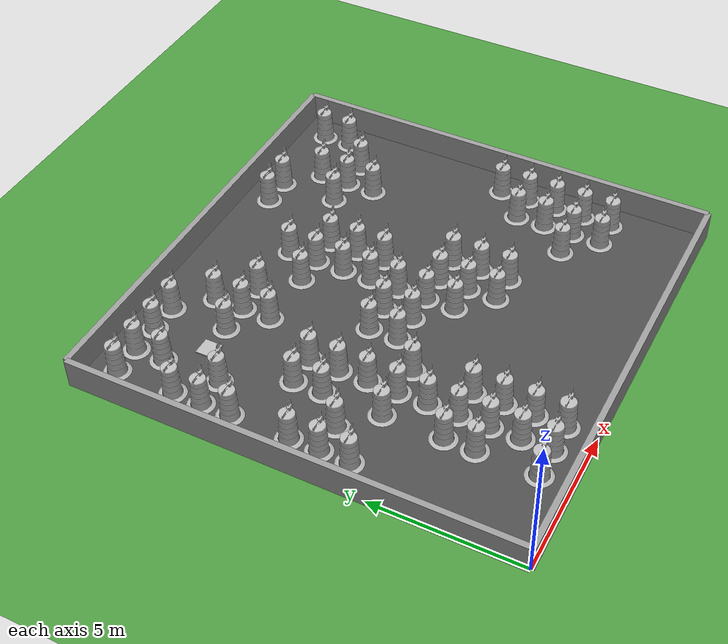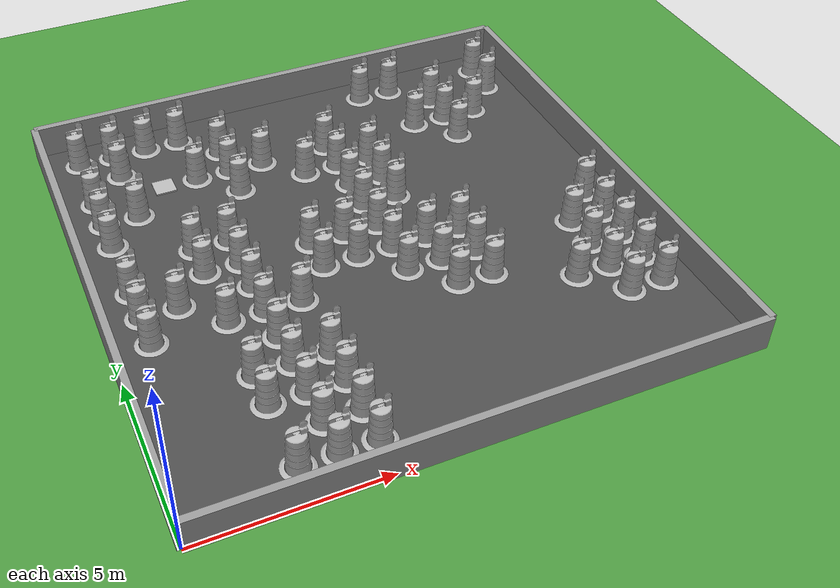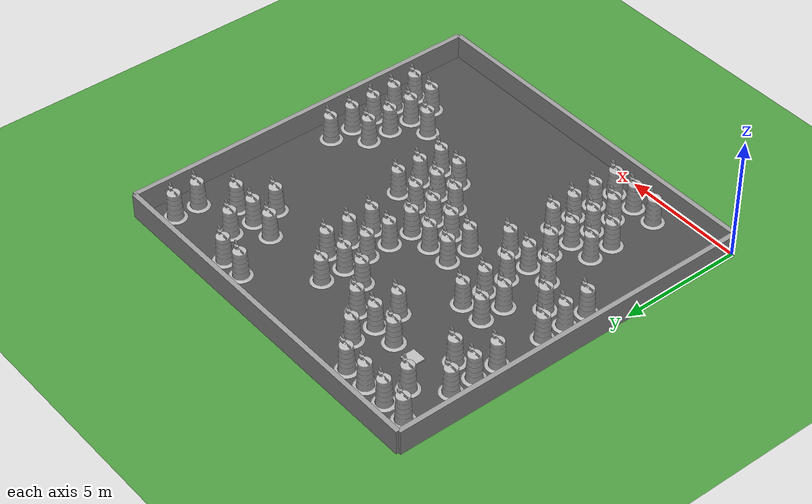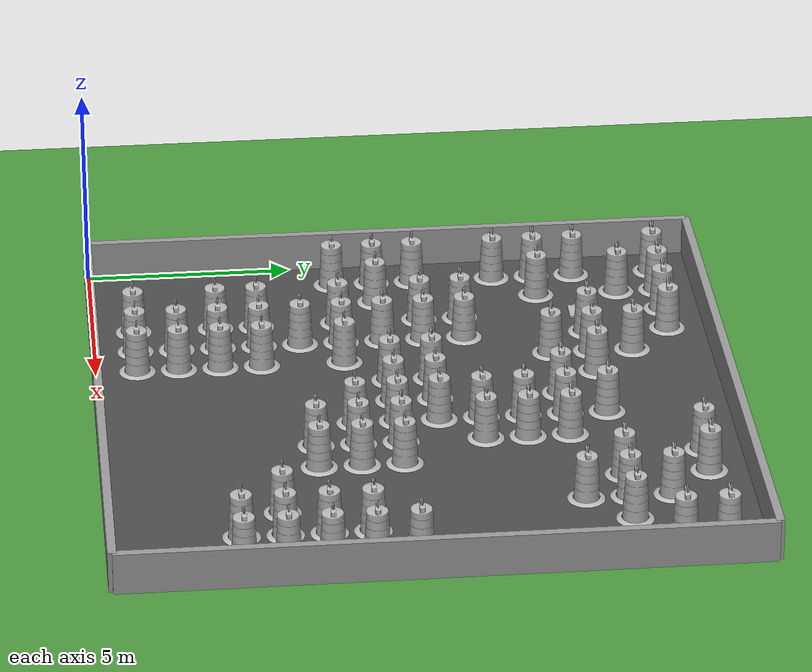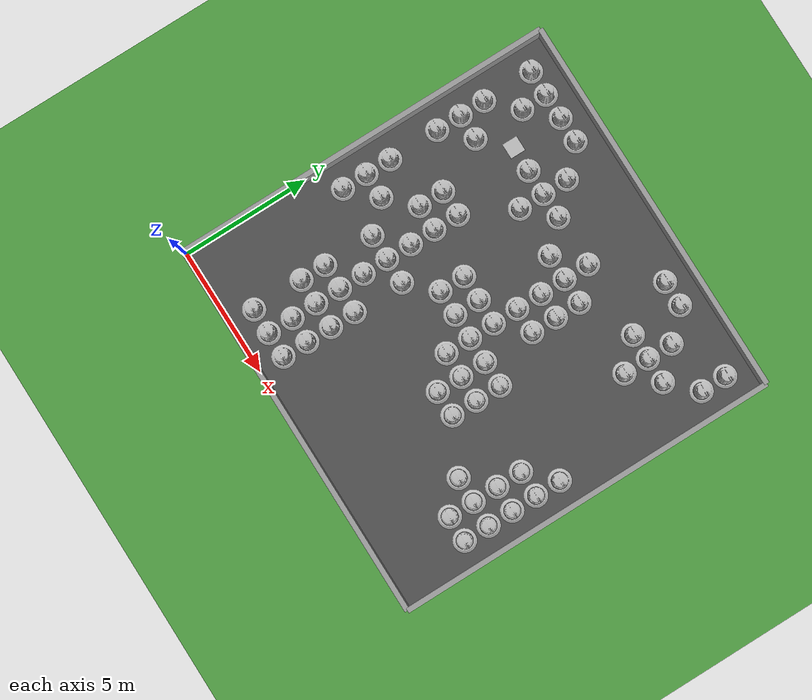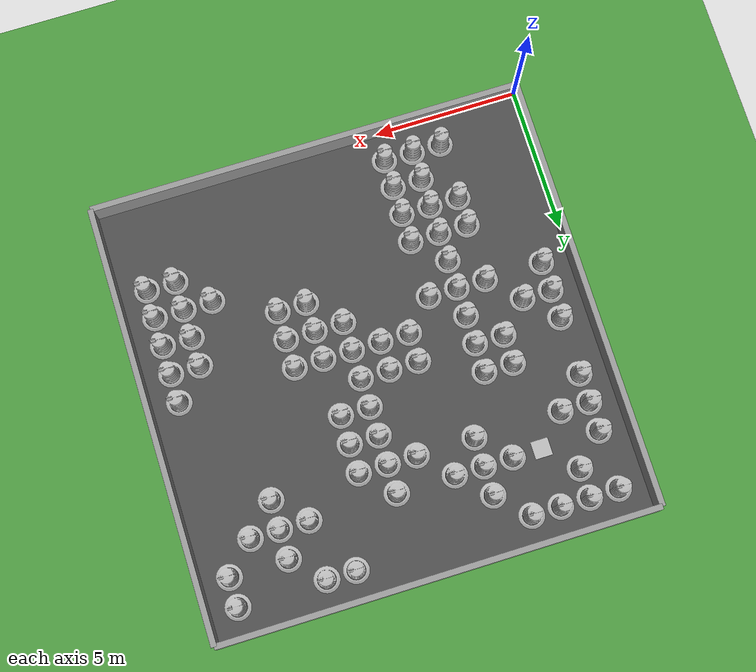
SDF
<sdf version="1.4">
 <world name="default">
  <model name="vrc_driving_terrain">
   <static>1</static>
   <link name="grass_plane">
    <visual name="visual_0">
     <cast_shadows>0</cast_shadows>
     <geometry><plane><normal>0 0 1</normal><size>150 150</size></plane></geometry>
     <material>
      <script>
       <uri>model://vrc_driving_terrain/materials/scripts</uri>
       <uri>model://vrc_driving_terrain/materials/textures</uri>
       <name>vrc/grass</name>
      </script>
     </material>
    </visual>
   </link>
   <pose>0 0 0.01 0 -0 0</pose>
  </model>
  <include><uri>model://ground_plane</uri></include>
  <include><uri>model://sun</uri></include>
  <plugin filename="librotors_gazebo_ros_interface_plugin.so" name="ros_interface_plugin"/>
  <spherical_coordinates>
   <surface_model>EARTH_WGS84</surface_model>
   <latitude_deg>47.3667</latitude_deg>
   <longitude_deg>8.5500</longitude_deg>
   <elevation>500.0</elevation>
   <heading_deg>0</heading_deg>
  </spherical_coordinates>
  <physics type="ode">
   <ode>
    <solver><type>quick</type><iters>1000</iters><sor>1.3</sor></solver>
    <constraints>
     <cfm>0</cfm>
     <erp>0.2</erp>
     <contact_max_correcting_vel>100</contact_max_correcting_vel>
     <contact_surface_layer>0.001</contact_surface_layer>
    </constraints>
   </ode>
   <max_step_size>0.01</max_step_size>
   <real_time_factor>1</real_time_factor>
   <real_time_update_rate>100</real_time_update_rate>
   <gravity>0 0 -9.8</gravity>
  </physics>
  <model name="box_target_green">
   <static>1</static>
   <link name="link">
    <pose>3 12 0 0 0 0</pose>
    <collision name="collision"><geometry><box><size>6 6 2</size></box></geometry></collision>
    <visual name="visual">
     <geometry>
      <mesh><uri>model://box_target_green/meshes/mesh.dae</uri><scale>0.1 0.1 0.1</scale></mesh>
     </geometry>
    </visual>
   </link>
  </model>
  <model name="grey_wall">
   <static>1</static>
   <link name="link">
    <visual name="visual">
     <cast_shadows>0</cast_shadows>
     <geometry><box><size>15 0.2 2</size></box></geometry>
     <material>
      <script>
       <uri>model://grey_wall/materials/scripts</uri>
       <uri>model://grey_wall/materials/textures</uri>
       <name>vrc/grey_wall</name>
      </script>
     </material>
    </visual>
   </link>
   <pose>7.5 0 0 0 0 0</pose>
  </model>
  <model name="grey_wall">
   <static>1</static>
   <link name="link">
    <visual name="visual">
     <cast_shadows>0</cast_shadows>
     <geometry><box><size>15 0.2 2</size></box></geometry>
     <material>
      <script>
       <uri>model://grey_wall/materials/scripts</uri>
       <uri>model://grey_wall/materials/textures</uri>
       <name>vrc/grey_wall</name>
      </script>
     </material>
    </visual>
   </link>
   <pose>0 7.5 0 0 0 1.57079632679</pose>
  </model>
  <model name="grey_wall">
   <static>1</static>
   <link name="link">
    <visual name="visual">
     <cast_shadows>0</cast_shadows>
     <geometry><box><size>15 0.2 2</size></box></geometry>
     <material>
      <script>
       <uri>model://grey_wall/materials/scripts</uri>
       <uri>model://grey_wall/materials/textures</uri>
       <name>vrc/grey_wall</name>
      </script>
     </material>
    </visual>
   </link>
   <pose>15 7.5 0 0 0 -1.57079632679</pose>
  </model>
  <model name="grey_wall">
   <static>1</static>
   <link name="link">
    <visual name="visual">
     <cast_shadows>0</cast_shadows>
     <geometry><box><size>15 0.2 2</size></box></geometry>
     <material>
      <script>
       <uri>model://grey_wall/materials/scripts</uri>
       <uri>model://grey_wall/materials/textures</uri>
       <name>vrc/grey_wall</name>
      </script>
     </material>
    </visual>
   </link>
   <pose>7.5 15 0 0 0 3.14159265359</pose>
  </model>
  <model name="asphalt_plane">
   <static>1</static>
   <link name="link">
    <visual name="visual">
     <cast_shadows>0</cast_shadows>
     <geometry><box><size>15 15 0.1</size></box></geometry>
     <material>
      <script>
       <uri>model://asphalt_plane/materials/scripts</uri>
       <uri>model://asphalt_plane/materials/textures</uri>
       <name>vrc/asphalt</name>
      </script>
     </material>
    </visual>
   </link>
   <pose>7.5 7.5 0 0 0 0</pose>
  </model>
  <model name="Construction Barrel">
   <link name="link">
    <collision name="collision">
     <geometry>
      <mesh><uri>model://construction_barrel/meshes/construction_barrel.dae</uri><scale>1 1 1</scale></mesh>
     </geometry>
    </collision>
    <visual name="visual">
     <geometry><mesh><uri>model://construction_barrel/meshes/construction_barrel.dae</uri></mesh></geometry>
    </visual>
   </link>
   <pose>1 6 0 0 0 0</pose>
   <static>1</static>
  </model>
  <model name="Construction Barrel">
   <link name="link">
    <collision name="collision">
     <geometry>
      <mesh><uri>model://construction_barrel/meshes/construction_barrel.dae</uri><scale>1 1 1</scale></mesh>
     </geometry>
    </collision>
    <visual name="visual">
     <geometry><mesh><uri>model://construction_barrel/meshes/construction_barrel.dae</uri></mesh></geometry>
    </visual>
   </link>
   <pose>1 7 0 0 0 0</pose>
   <static>1</static>
  </model>
  <model name="Construction Barrel">
   <link name="link">
    <collision name="collision">
     <geometry>
      <mesh><uri>model://construction_barrel/meshes/construction_barrel.dae</uri><scale>1 1 1</scale></mesh>
     </geometry>
    </collision>
    <visual name="visual">
     <geometry><mesh><uri>model://construction_barrel/meshes/construction_barrel.dae</uri></mesh></geometry>
    </visual>
   </link>
   <pose>1 8 0 0 0 0</pose>
   <static>1</static>
  </model>
  <model name="Construction Barrel">
   <link name="link">
    <collision name="collision">
     <geometry>
      <mesh><uri>model://construction_barrel/meshes/construction_barrel.dae</uri><scale>1 1 1</scale></mesh>
     </geometry>
    </collision>
    <visual name="visual">
     <geometry><mesh><uri>model://construction_barrel/meshes/construction_barrel.dae</uri></mesh></geometry>
    </visual>
   </link>
   <pose>1 10 0 0 0 0</pose>
   <static>1</static>
  </model>
  <model name="Construction Barrel">
   <link name="link">
    <collision name="collision">
     <geometry>
      <mesh><uri>model://construction_barrel/meshes/construction_barrel.dae</uri><scale>1 1 1</scale></mesh>
     </geometry>
    </collision>
    <visual name="visual">
     <geometry><mesh><uri>model://construction_barrel/meshes/construction_barrel.dae</uri></mesh></geometry>
    </visual>
   </link>
   <pose>1 11 0 0 0 0</pose>
   <static>1</static>
  </model>
  <model name="Construction Barrel">
   <link name="link">
    <collision name="collision">
     <geometry>
      <mesh><uri>model://construction_barrel/meshes/construction_barrel.dae</uri><scale>1 1 1</scale></mesh>
     </geometry>
    </collision>
    <visual name="visual">
     <geometry><mesh><uri>model://construction_barrel/meshes/construction_barrel.dae</uri></mesh></geometry>
    </visual>
   </link>
   <pose>1 12 0 0 0 0</pose>
   <static>1</static>
  </model>
  <model name="Construction Barrel">
   <link name="link">
    <collision name="collision">
     <geometry>
      <mesh><uri>model://construction_barrel/meshes/construction_barrel.dae</uri><scale>1 1 1</scale></mesh>
     </geometry>
    </collision>
    <visual name="visual">
     <geometry><mesh><uri>model://construction_barrel/meshes/construction_barrel.dae</uri></mesh></geometry>
    </visual>
   </link>
   <pose>1 14 0 0 0 0</pose>
   <static>1</static>
  </model>
  <model name="Construction Barrel">
   <link name="link">
    <collision name="collision">
     <geometry>
      <mesh><uri>model://construction_barrel/meshes/construction_barrel.dae</uri><scale>1 1 1</scale></mesh>
     </geometry>
    </collision>
    <visual name="visual">
     <geometry><mesh><uri>model://construction_barrel/meshes/construction_barrel.dae</uri></mesh></geometry>
    </visual>
   </link>
   <pose>2 7 0 0 0 0</pose>
   <static>1</static>
  </model>
  <model name="Construction Barrel">
   <link name="link">
    <collision name="collision">
     <geometry>
      <mesh><uri>model://construction_barrel/meshes/construction_barrel.dae</uri><scale>1 1 1</scale></mesh>
     </geometry>
    </collision>
    <visual name="visual">
     <geometry><mesh><uri>model://construction_barrel/meshes/construction_barrel.dae</uri></mesh></geometry>
    </visual>
   </link>
   <pose>2 11 0 0 0 0</pose>
   <static>1</static>
  </model>
  <model name="Construction Barrel">
   <link name="link">
    <collision name="collision">
     <geometry>
      <mesh><uri>model://construction_barrel/meshes/construction_barrel.dae</uri><scale>1 1 1</scale></mesh>
     </geometry>
    </collision>
    <visual name="visual">
     <geometry><mesh><uri>model://construction_barrel/meshes/construction_barrel.dae</uri></mesh></geometry>
    </visual>
   </link>
   <pose>2 13 0 0 0 0</pose>
   <static>1</static>
  </model>
  <model name="Construction Barrel">
   <link name="link">
    <collision name="collision">
     <geometry>
      <mesh><uri>model://construction_barrel/meshes/construction_barrel.dae</uri><scale>1 1 1</scale></mesh>
     </geometry>
    </collision>
    <visual name="visual">
     <geometry><mesh><uri>model://construction_barrel/meshes/construction_barrel.dae</uri></mesh></geometry>
    </visual>
   </link>
   <pose>2 14 0 0 0 0</pose>
   <static>1</static>
  </model>
  <model name="Construction Barrel">
   <link name="link">
    <collision name="collision">
     <geometry>
      <mesh><uri>model://construction_barrel/meshes/construction_barrel.dae</uri><scale>1 1 1</scale></mesh>
     </geometry>
    </collision>
    <visual name="visual">
     <geometry><mesh><uri>model://construction_barrel/meshes/construction_barrel.dae</uri></mesh></geometry>
    </visual>
   </link>
   <pose>3 1 0 0 0 0</pose>
   <static>1</static>
  </model>
  <model name="Construction Barrel">
   <link name="link">
    <collision name="collision">
     <geometry>
      <mesh><uri>model://construction_barrel/meshes/construction_barrel.dae</uri><scale>1 1 1</scale></mesh>
     </geometry>
    </collision>
    <visual name="visual">
     <geometry><mesh><uri>model://construction_barrel/meshes/construction_barrel.dae</uri></mesh></geometry>
    </visual>
   </link>
   <pose>3 3 0 0 0 0</pose>
   <static>1</static>
  </model>
  <model name="Construction Barrel">
   <link name="link">
    <collision name="collision">
     <geometry>
      <mesh><uri>model://construction_barrel/meshes/construction_barrel.dae</uri><scale>1 1 1</scale></mesh>
     </geometry>
    </collision>
    <visual name="visual">
     <geometry><mesh><uri>model://construction_barrel/meshes/construction_barrel.dae</uri></mesh></geometry>
    </visual>
   </link>
   <pose>3 4 0 0 0 0</pose>
   <static>1</static>
  </model>
  <model name="Construction Barrel">
   <link name="link">
    <collision name="collision">
     <geometry>
      <mesh><uri>model://construction_barrel/meshes/construction_barrel.dae</uri><scale>1 1 1</scale></mesh>
     </geometry>
    </collision>
    <visual name="visual">
     <geometry><mesh><uri>model://construction_barrel/meshes/construction_barrel.dae</uri></mesh></geometry>
    </visual>
   </link>
   <pose>3 6 0 0 0 0</pose>
   <static>1</static>
  </model>
  <model name="Construction Barrel">
   <link name="link">
    <collision name="collision">
     <geometry>
      <mesh><uri>model://construction_barrel/meshes/construction_barrel.dae</uri><scale>1 1 1</scale></mesh>
     </geometry>
    </collision>
    <visual name="visual">
     <geometry><mesh><uri>model://construction_barrel/meshes/construction_barrel.dae</uri></mesh></geometry>
    </visual>
   </link>
   <pose>3 8 0 0 0 0</pose>
   <static>1</static>
  </model>
  <model name="Construction Barrel">
   <link name="link">
    <collision name="collision">
     <geometry>
      <mesh><uri>model://construction_barrel/meshes/construction_barrel.dae</uri><scale>1 1 1</scale></mesh>
     </geometry>
    </collision>
    <visual name="visual">
     <geometry><mesh><uri>model://construction_barrel/meshes/construction_barrel.dae</uri></mesh></geometry>
    </visual>
   </link>
   <pose>3 9 0 0 0 0</pose>
   <static>1</static>
  </model>
  <model name="Construction Barrel">
   <link name="link">
    <collision name="collision">
     <geometry>
      <mesh><uri>model://construction_barrel/meshes/construction_barrel.dae</uri><scale>1 1 1</scale></mesh>
     </geometry>
    </collision>
    <visual name="visual">
     <geometry><mesh><uri>model://construction_barrel/meshes/construction_barrel.dae</uri></mesh></geometry>
    </visual>
   </link>
   <pose>3 14 0 0 0 0</pose>
   <static>1</static>
  </model>
  <model name="Construction Barrel">
   <link name="link">
    <collision name="collision">
     <geometry>
      <mesh><uri>model://construction_barrel/meshes/construction_barrel.dae</uri><scale>1 1 1</scale></mesh>
     </geometry>
    </collision>
    <visual name="visual">
     <geometry><mesh><uri>model://construction_barrel/meshes/construction_barrel.dae</uri></mesh></geometry>
    </visual>
   </link>
   <pose>4 1 0 0 0 0</pose>
   <static>1</static>
  </model>
  <model name="Construction Barrel">
   <link name="link">
    <collision name="collision">
     <geometry>
      <mesh><uri>model://construction_barrel/meshes/construction_barrel.dae</uri><scale>1 1 1</scale></mesh>
     </geometry>
    </collision>
    <visual name="visual">
     <geometry><mesh><uri>model://construction_barrel/meshes/construction_barrel.dae</uri></mesh></geometry>
    </visual>
   </link>
   <pose>4 2 0 0 0 0</pose>
   <static>1</static>
  </model>
  <model name="Construction Barrel">
   <link name="link">
    <collision name="collision">
     <geometry>
      <mesh><uri>model://construction_barrel/meshes/construction_barrel.dae</uri><scale>1 1 1</scale></mesh>
     </geometry>
    </collision>
    <visual name="visual">
     <geometry><mesh><uri>model://construction_barrel/meshes/construction_barrel.dae</uri></mesh></geometry>
    </visual>
   </link>
   <pose>4 3 0 0 0 0</pose>
   <static>1</static>
  </model>
  <model name="Construction Barrel">
   <link name="link">
    <collision name="collision">
     <geometry>
      <mesh><uri>model://construction_barrel/meshes/construction_barrel.dae</uri><scale>1 1 1</scale></mesh>
     </geometry>
    </collision>
    <visual name="visual">
     <geometry><mesh><uri>model://construction_barrel/meshes/construction_barrel.dae</uri></mesh></geometry>
    </visual>
   </link>
   <pose>4 4 0 0 0 0</pose>
   <static>1</static>
  </model>
  <model name="Construction Barrel">
   <link name="link">
    <collision name="collision">
     <geometry>
      <mesh><uri>model://construction_barrel/meshes/construction_barrel.dae</uri><scale>1 1 1</scale></mesh>
     </geometry>
    </collision>
    <visual name="visual">
     <geometry><mesh><uri>model://construction_barrel/meshes/construction_barrel.dae</uri></mesh></geometry>
    </visual>
   </link>
   <pose>4 5 0 0 0 0</pose>
   <static>1</static>
  </model>
  <model name="Construction Barrel">
   <link name="link">
    <collision name="collision">
     <geometry>
      <mesh><uri>model://construction_barrel/meshes/construction_barrel.dae</uri><scale>1 1 1</scale></mesh>
     </geometry>
    </collision>
    <visual name="visual">
     <geometry><mesh><uri>model://construction_barrel/meshes/construction_barrel.dae</uri></mesh></geometry>
    </visual>
   </link>
   <pose>4 6 0 0 0 0</pose>
   <static>1</static>
  </model>
  <model name="Construction Barrel">
   <link name="link">
    <collision name="collision">
     <geometry>
      <mesh><uri>model://construction_barrel/meshes/construction_barrel.dae</uri><scale>1 1 1</scale></mesh>
     </geometry>
    </collision>
    <visual name="visual">
     <geometry><mesh><uri>model://construction_barrel/meshes/construction_barrel.dae</uri></mesh></geometry>
    </visual>
   </link>
   <pose>4 7 0 0 0 0</pose>
   <static>1</static>
  </model>
  <model name="Construction Barrel">
   <link name="link">
    <collision name="collision">
     <geometry>
      <mesh><uri>model://construction_barrel/meshes/construction_barrel.dae</uri><scale>1 1 1</scale></mesh>
     </geometry>
    </collision>
    <visual name="visual">
     <geometry><mesh><uri>model://construction_barrel/meshes/construction_barrel.dae</uri></mesh></geometry>
    </visual>
   </link>
   <pose>4 8 0 0 0 0</pose>
   <static>1</static>
  </model>
  <model name="Construction Barrel">
   <link name="link">
    <collision name="collision">
     <geometry>
      <mesh><uri>model://construction_barrel/meshes/construction_barrel.dae</uri><scale>1 1 1</scale></mesh>
     </geometry>
    </collision>
    <visual name="visual">
     <geometry><mesh><uri>model://construction_barrel/meshes/construction_barrel.dae</uri></mesh></geometry>
    </visual>
   </link>
   <pose>4 9 0 0 0 0</pose>
   <static>1</static>
  </model>
  <model name="Construction Barrel">
   <link name="link">
    <collision name="collision">
     <geometry>
      <mesh><uri>model://construction_barrel/meshes/construction_barrel.dae</uri><scale>1 1 1</scale></mesh>
     </geometry>
    </collision>
    <visual name="visual">
     <geometry><mesh><uri>model://construction_barrel/meshes/construction_barrel.dae</uri></mesh></geometry>
    </visual>
   </link>
   <pose>4 12 0 0 0 0</pose>
   <static>1</static>
  </model>
  <model name="Construction Barrel">
   <link name="link">
    <collision name="collision">
     <geometry>
      <mesh><uri>model://construction_barrel/meshes/construction_barrel.dae</uri><scale>1 1 1</scale></mesh>
     </geometry>
    </collision>
    <visual name="visual">
     <geometry><mesh><uri>model://construction_barrel/meshes/construction_barrel.dae</uri></mesh></geometry>
    </visual>
   </link>
   <pose>4 14 0 0 0 0</pose>
   <static>1</static>
  </model>
  <model name="Construction Barrel">
   <link name="link">
    <collision name="collision">
     <geometry>
      <mesh><uri>model://construction_barrel/meshes/construction_barrel.dae</uri><scale>1 1 1</scale></mesh>
     </geometry>
    </collision>
    <visual name="visual">
     <geometry><mesh><uri>model://construction_barrel/meshes/construction_barrel.dae</uri></mesh></geometry>
    </visual>
   </link>
   <pose>5 1 0 0 0 0</pose>
   <static>1</static>
  </model>
  <model name="Construction Barrel">
   <link name="link">
    <collision name="collision">
     <geometry>
      <mesh><uri>model://construction_barrel/meshes/construction_barrel.dae</uri><scale>1 1 1</scale></mesh>
     </geometry>
    </collision>
    <visual name="visual">
     <geometry><mesh><uri>model://construction_barrel/meshes/construction_barrel.dae</uri></mesh></geometry>
    </visual>
   </link>
   <pose>5 2 0 0 0 0</pose>
   <static>1</static>
  </model>
  <model name="Construction Barrel">
   <link name="link">
    <collision name="collision">
     <geometry>
      <mesh><uri>model://construction_barrel/meshes/construction_barrel.dae</uri><scale>1 1 1</scale></mesh>
     </geometry>
    </collision>
    <visual name="visual">
     <geometry><mesh><uri>model://construction_barrel/meshes/construction_barrel.dae</uri></mesh></geometry>
    </visual>
   </link>
   <pose>5 3 0 0 0 0</pose>
   <static>1</static>
  </model>
  <model name="Construction Barrel">
   <link name="link">
    <collision name="collision">
     <geometry>
      <mesh><uri>model://construction_barrel/meshes/construction_barrel.dae</uri><scale>1 1 1</scale></mesh>
     </geometry>
    </collision>
    <visual name="visual">
     <geometry><mesh><uri>model://construction_barrel/meshes/construction_barrel.dae</uri></mesh></geometry>
    </visual>
   </link>
   <pose>5 4 0 0 0 0</pose>
   <static>1</static>
  </model>
  <model name="Construction Barrel">
   <link name="link">
    <collision name="collision">
     <geometry>
      <mesh><uri>model://construction_barrel/meshes/construction_barrel.dae</uri><scale>1 1 1</scale></mesh>
     </geometry>
    </collision>
    <visual name="visual">
     <geometry><mesh><uri>model://construction_barrel/meshes/construction_barrel.dae</uri></mesh></geometry>
    </visual>
   </link>
   <pose>5 6 0 0 0 0</pose>
   <static>1</static>
  </model>
  <model name="Construction Barrel">
   <link name="link">
    <collision name="collision">
     <geometry>
      <mesh><uri>model://construction_barrel/meshes/construction_barrel.dae</uri><scale>1 1 1</scale></mesh>
     </geometry>
    </collision>
    <visual name="visual">
     <geometry><mesh><uri>model://construction_barrel/meshes/construction_barrel.dae</uri></mesh></geometry>
    </visual>
   </link>
   <pose>5 11 0 0 0 0</pose>
   <static>1</static>
  </model>
  <model name="Construction Barrel">
   <link name="link">
    <collision name="collision">
     <geometry>
      <mesh><uri>model://construction_barrel/meshes/construction_barrel.dae</uri><scale>1 1 1</scale></mesh>
     </geometry>
    </collision>
    <visual name="visual">
     <geometry><mesh><uri>model://construction_barrel/meshes/construction_barrel.dae</uri></mesh></geometry>
    </visual>
   </link>
   <pose>5 12 0 0 0 0</pose>
   <static>1</static>
  </model>
  <model name="Construction Barrel">
   <link name="link">
    <collision name="collision">
     <geometry>
      <mesh><uri>model://construction_barrel/meshes/construction_barrel.dae</uri><scale>1 1 1</scale></mesh>
     </geometry>
    </collision>
    <visual name="visual">
     <geometry><mesh><uri>model://construction_barrel/meshes/construction_barrel.dae</uri></mesh></geometry>
    </visual>
   </link>
   <pose>5 13 0 0 0 0</pose>
   <static>1</static>
  </model>
  <model name="Construction Barrel">
   <link name="link">
    <collision name="collision">
     <geometry>
      <mesh><uri>model://construction_barrel/meshes/construction_barrel.dae</uri><scale>1 1 1</scale></mesh>
     </geometry>
    </collision>
    <visual name="visual">
     <geometry><mesh><uri>model://construction_barrel/meshes/construction_barrel.dae</uri></mesh></geometry>
    </visual>
   </link>
   <pose>6 7 0 0 0 0</pose>
   <static>1</static>
  </model>
  <model name="Construction Barrel">
   <link name="link">
    <collision name="collision">
     <geometry>
      <mesh><uri>model://construction_barrel/meshes/construction_barrel.dae</uri><scale>1 1 1</scale></mesh>
     </geometry>
    </collision>
    <visual name="visual">
     <geometry><mesh><uri>model://construction_barrel/meshes/construction_barrel.dae</uri></mesh></geometry>
    </visual>
   </link>
   <pose>6 8 0 0 0 0</pose>
   <static>1</static>
  </model>
  <model name="Construction Barrel">
   <link name="link">
    <collision name="collision">
     <geometry>
      <mesh><uri>model://construction_barrel/meshes/construction_barrel.dae</uri><scale>1 1 1</scale></mesh>
     </geometry>
    </collision>
    <visual name="visual">
     <geometry><mesh><uri>model://construction_barrel/meshes/construction_barrel.dae</uri></mesh></geometry>
    </visual>
   </link>
   <pose>6 12 0 0 0 0</pose>
   <static>1</static>
  </model>
  <model name="Construction Barrel">
   <link name="link">
    <collision name="collision">
     <geometry>
      <mesh><uri>model://construction_barrel/meshes/construction_barrel.dae</uri><scale>1 1 1</scale></mesh>
     </geometry>
    </collision>
    <visual name="visual">
     <geometry><mesh><uri>model://construction_barrel/meshes/construction_barrel.dae</uri></mesh></geometry>
    </visual>
   </link>
   <pose>7 7 0 0 0 0</pose>
   <static>1</static>
  </model>
  <model name="Construction Barrel">
   <link name="link">
    <collision name="collision">
     <geometry>
      <mesh><uri>model://construction_barrel/meshes/construction_barrel.dae</uri><scale>1 1 1</scale></mesh>
     </geometry>
    </collision>
    <visual name="visual">
     <geometry><mesh><uri>model://construction_barrel/meshes/construction_barrel.dae</uri></mesh></geometry>
    </visual>
   </link>
   <pose>7 8 0 0 0 0</pose>
   <static>1</static>
  </model>
  <model name="Construction Barrel">
   <link name="link">
    <collision name="collision">
     <geometry>
      <mesh><uri>model://construction_barrel/meshes/construction_barrel.dae</uri><scale>1 1 1</scale></mesh>
     </geometry>
    </collision>
    <visual name="visual">
     <geometry><mesh><uri>model://construction_barrel/meshes/construction_barrel.dae</uri></mesh></geometry>
    </visual>
   </link>
   <pose>7 11 0 0 0 0</pose>
   <static>1</static>
  </model>
  <model name="Construction Barrel">
   <link name="link">
    <collision name="collision">
     <geometry>
      <mesh><uri>model://construction_barrel/meshes/construction_barrel.dae</uri><scale>1 1 1</scale></mesh>
     </geometry>
    </collision>
    <visual name="visual">
     <geometry><mesh><uri>model://construction_barrel/meshes/construction_barrel.dae</uri></mesh></geometry>
    </visual>
   </link>
   <pose>8 6 0 0 0 0</pose>
   <static>1</static>
  </model>
  <model name="Construction Barrel">
   <link name="link">
    <collision name="collision">
     <geometry>
      <mesh><uri>model://construction_barrel/meshes/construction_barrel.dae</uri><scale>1 1 1</scale></mesh>
     </geometry>
    </collision>
    <visual name="visual">
     <geometry><mesh><uri>model://construction_barrel/meshes/construction_barrel.dae</uri></mesh></geometry>
    </visual>
   </link>
   <pose>8 7 0 0 0 0</pose>
   <static>1</static>
  </model>
  <model name="Construction Barrel">
   <link name="link">
    <collision name="collision">
     <geometry>
      <mesh><uri>model://construction_barrel/meshes/construction_barrel.dae</uri><scale>1 1 1</scale></mesh>
     </geometry>
    </collision>
    <visual name="visual">
     <geometry><mesh><uri>model://construction_barrel/meshes/construction_barrel.dae</uri></mesh></geometry>
    </visual>
   </link>
   <pose>8 8 0 0 0 0</pose>
   <static>1</static>
  </model>
  <model name="Construction Barrel">
   <link name="link">
    <collision name="collision">
     <geometry>
      <mesh><uri>model://construction_barrel/meshes/construction_barrel.dae</uri><scale>1 1 1</scale></mesh>
     </geometry>
    </collision>
    <visual name="visual">
     <geometry><mesh><uri>model://construction_barrel/meshes/construction_barrel.dae</uri></mesh></geometry>
    </visual>
   </link>
   <pose>8 9 0 0 0 0</pose>
   <static>1</static>
  </model>
  <model name="Construction Barrel">
   <link name="link">
    <collision name="collision">
     <geometry>
      <mesh><uri>model://construction_barrel/meshes/construction_barrel.dae</uri><scale>1 1 1</scale></mesh>
     </geometry>
    </collision>
    <visual name="visual">
     <geometry><mesh><uri>model://construction_barrel/meshes/construction_barrel.dae</uri></mesh></geometry>
    </visual>
   </link>
   <pose>8 10 0 0 0 0</pose>
   <static>1</static>
  </model>
  <model name="Construction Barrel">
   <link name="link">
    <collision name="collision">
     <geometry>
      <mesh><uri>model://construction_barrel/meshes/construction_barrel.dae</uri><scale>1 1 1</scale></mesh>
     </geometry>
    </collision>
    <visual name="visual">
     <geometry><mesh><uri>model://construction_barrel/meshes/construction_barrel.dae</uri></mesh></geometry>
    </visual>
   </link>
   <pose>8 11 0 0 0 0</pose>
   <static>1</static>
  </model>
  <model name="Construction Barrel">
   <link name="link">
    <collision name="collision">
     <geometry>
      <mesh><uri>model://construction_barrel/meshes/construction_barrel.dae</uri><scale>1 1 1</scale></mesh>
     </geometry>
    </collision>
    <visual name="visual">
     <geometry><mesh><uri>model://construction_barrel/meshes/construction_barrel.dae</uri></mesh></geometry>
    </visual>
   </link>
   <pose>8 12 0 0 0 0</pose>
   <static>1</static>
  </model>
  <model name="Construction Barrel">
   <link name="link">
    <collision name="collision">
     <geometry>
      <mesh><uri>model://construction_barrel/meshes/construction_barrel.dae</uri><scale>1 1 1</scale></mesh>
     </geometry>
    </collision>
    <visual name="visual">
     <geometry><mesh><uri>model://construction_barrel/meshes/construction_barrel.dae</uri></mesh></geometry>
    </visual>
   </link>
   <pose>9 5 0 0 0 0</pose>
   <static>1</static>
  </model>
  <model name="Construction Barrel">
   <link name="link">
    <collision name="collision">
     <geometry>
      <mesh><uri>model://construction_barrel/meshes/construction_barrel.dae</uri><scale>1 1 1</scale></mesh>
     </geometry>
    </collision>
    <visual name="visual">
     <geometry><mesh><uri>model://construction_barrel/meshes/construction_barrel.dae</uri></mesh></geometry>
    </visual>
   </link>
   <pose>9 6 0 0 0 0</pose>
   <static>1</static>
  </model>
  <model name="Construction Barrel">
   <link name="link">
    <collision name="collision">
     <geometry>
      <mesh><uri>model://construction_barrel/meshes/construction_barrel.dae</uri><scale>1 1 1</scale></mesh>
     </geometry>
    </collision>
    <visual name="visual">
     <geometry><mesh><uri>model://construction_barrel/meshes/construction_barrel.dae</uri></mesh></geometry>
    </visual>
   </link>
   <pose>9 7 0 0 0 0</pose>
   <static>1</static>
  </model>
  <model name="Construction Barrel">
   <link name="link">
    <collision name="collision">
     <geometry>
      <mesh><uri>model://construction_barrel/meshes/construction_barrel.dae</uri><scale>1 1 1</scale></mesh>
     </geometry>
    </collision>
    <visual name="visual">
     <geometry><mesh><uri>model://construction_barrel/meshes/construction_barrel.dae</uri></mesh></geometry>
    </visual>
   </link>
   <pose>9 9 0 0 0 0</pose>
   <static>1</static>
  </model>
  <model name="Construction Barrel">
   <link name="link">
    <collision name="collision">
     <geometry>
      <mesh><uri>model://construction_barrel/meshes/construction_barrel.dae</uri><scale>1 1 1</scale></mesh>
     </geometry>
    </collision>
    <visual name="visual">
     <geometry><mesh><uri>model://construction_barrel/meshes/construction_barrel.dae</uri></mesh></geometry>
    </visual>
   </link>
   <pose>9 10 0 0 0 0</pose>
   <static>1</static>
  </model>
  <model name="Construction Barrel">
   <link name="link">
    <collision name="collision">
     <geometry>
      <mesh><uri>model://construction_barrel/meshes/construction_barrel.dae</uri><scale>1 1 1</scale></mesh>
     </geometry>
    </collision>
    <visual name="visual">
     <geometry><mesh><uri>model://construction_barrel/meshes/construction_barrel.dae</uri></mesh></geometry>
    </visual>
   </link>
   <pose>9 11 0 0 0 0</pose>
   <static>1</static>
  </model>
  <model name="Construction Barrel">
   <link name="link">
    <collision name="collision">
     <geometry>
      <mesh><uri>model://construction_barrel/meshes/construction_barrel.dae</uri><scale>1 1 1</scale></mesh>
     </geometry>
    </collision>
    <visual name="visual">
     <geometry><mesh><uri>model://construction_barrel/meshes/construction_barrel.dae</uri></mesh></geometry>
    </visual>
   </link>
   <pose>10 5 0 0 0 0</pose>
   <static>1</static>
  </model>
  <model name="Construction Barrel">
   <link name="link">
    <collision name="collision">
     <geometry>
      <mesh><uri>model://construction_barrel/meshes/construction_barrel.dae</uri><scale>1 1 1</scale></mesh>
     </geometry>
    </collision>
    <visual name="visual">
     <geometry><mesh><uri>model://construction_barrel/meshes/construction_barrel.dae</uri></mesh></geometry>
    </visual>
   </link>
   <pose>10 6 0 0 0 0</pose>
   <static>1</static>
  </model>
  <model name="Construction Barrel">
   <link name="link">
    <collision name="collision">
     <geometry>
      <mesh><uri>model://construction_barrel/meshes/construction_barrel.dae</uri><scale>1 1 1</scale></mesh>
     </geometry>
    </collision>
    <visual name="visual">
     <geometry><mesh><uri>model://construction_barrel/meshes/construction_barrel.dae</uri></mesh></geometry>
    </visual>
   </link>
   <pose>10 7 0 0 0 0</pose>
   <static>1</static>
  </model>
  <model name="Construction Barrel">
   <link name="link">
    <collision name="collision">
     <geometry>
      <mesh><uri>model://construction_barrel/meshes/construction_barrel.dae</uri><scale>1 1 1</scale></mesh>
     </geometry>
    </collision>
    <visual name="visual">
     <geometry><mesh><uri>model://construction_barrel/meshes/construction_barrel.dae</uri></mesh></geometry>
    </visual>
   </link>
   <pose>10 14 0 0 0 0</pose>
   <static>1</static>
  </model>
  <model name="Construction Barrel">
   <link name="link">
    <collision name="collision">
     <geometry>
      <mesh><uri>model://construction_barrel/meshes/construction_barrel.dae</uri><scale>1 1 1</scale></mesh>
     </geometry>
    </collision>
    <visual name="visual">
     <geometry><mesh><uri>model://construction_barrel/meshes/construction_barrel.dae</uri></mesh></geometry>
    </visual>
   </link>
   <pose>11 12 0 0 0 0</pose>
   <static>1</static>
  </model>
  <model name="Construction Barrel">
   <link name="link">
    <collision name="collision">
     <geometry>
      <mesh><uri>model://construction_barrel/meshes/construction_barrel.dae</uri><scale>1 1 1</scale></mesh>
     </geometry>
    </collision>
    <visual name="visual">
     <geometry><mesh><uri>model://construction_barrel/meshes/construction_barrel.dae</uri></mesh></geometry>
    </visual>
   </link>
   <pose>11 14 0 0 0 0</pose>
   <static>1</static>
  </model>
  <model name="Construction Barrel">
   <link name="link">
    <collision name="collision">
     <geometry>
      <mesh><uri>model://construction_barrel/meshes/construction_barrel.dae</uri><scale>1 1 1</scale></mesh>
     </geometry>
    </collision>
    <visual name="visual">
     <geometry><mesh><uri>model://construction_barrel/meshes/construction_barrel.dae</uri></mesh></geometry>
    </visual>
   </link>
   <pose>12 4 0 0 0 0</pose>
   <static>1</static>
  </model>
  <model name="Construction Barrel">
   <link name="link">
    <collision name="collision">
     <geometry>
      <mesh><uri>model://construction_barrel/meshes/construction_barrel.dae</uri><scale>1 1 1</scale></mesh>
     </geometry>
    </collision>
    <visual name="visual">
     <geometry><mesh><uri>model://construction_barrel/meshes/construction_barrel.dae</uri></mesh></geometry>
    </visual>
   </link>
   <pose>12 11 0 0 0 0</pose>
   <static>1</static>
  </model>
  <model name="Construction Barrel">
   <link name="link">
    <collision name="collision">
     <geometry>
      <mesh><uri>model://construction_barrel/meshes/construction_barrel.dae</uri><scale>1 1 1</scale></mesh>
     </geometry>
    </collision>
    <visual name="visual">
     <geometry><mesh><uri>model://construction_barrel/meshes/construction_barrel.dae</uri></mesh></geometry>
    </visual>
   </link>
   <pose>12 12 0 0 0 0</pose>
   <static>1</static>
  </model>
  <model name="Construction Barrel">
   <link name="link">
    <collision name="collision">
     <geometry>
      <mesh><uri>model://construction_barrel/meshes/construction_barrel.dae</uri><scale>1 1 1</scale></mesh>
     </geometry>
    </collision>
    <visual name="visual">
     <geometry><mesh><uri>model://construction_barrel/meshes/construction_barrel.dae</uri></mesh></geometry>
    </visual>
   </link>
   <pose>12 13 0 0 0 0</pose>
   <static>1</static>
  </model>
  <model name="Construction Barrel">
   <link name="link">
    <collision name="collision">
     <geometry>
      <mesh><uri>model://construction_barrel/meshes/construction_barrel.dae</uri><scale>1 1 1</scale></mesh>
     </geometry>
    </collision>
    <visual name="visual">
     <geometry><mesh><uri>model://construction_barrel/meshes/construction_barrel.dae</uri></mesh></geometry>
    </visual>
   </link>
   <pose>13 3 0 0 0 0</pose>
   <static>1</static>
  </model>
  <model name="Construction Barrel">
   <link name="link">
    <collision name="collision">
     <geometry>
      <mesh><uri>model://construction_barrel/meshes/construction_barrel.dae</uri><scale>1 1 1</scale></mesh>
     </geometry>
    </collision>
    <visual name="visual">
     <geometry><mesh><uri>model://construction_barrel/meshes/construction_barrel.dae</uri></mesh></geometry>
    </visual>
   </link>
   <pose>13 4 0 0 0 0</pose>
   <static>1</static>
  </model>
  <model name="Construction Barrel">
   <link name="link">
    <collision name="collision">
     <geometry>
      <mesh><uri>model://construction_barrel/meshes/construction_barrel.dae</uri><scale>1 1 1</scale></mesh>
     </geometry>
    </collision>
    <visual name="visual">
     <geometry><mesh><uri>model://construction_barrel/meshes/construction_barrel.dae</uri></mesh></geometry>
    </visual>
   </link>
   <pose>13 5 0 0 0 0</pose>
   <static>1</static>
  </model>
  <model name="Construction Barrel">
   <link name="link">
    <collision name="collision">
     <geometry>
      <mesh><uri>model://construction_barrel/meshes/construction_barrel.dae</uri><scale>1 1 1</scale></mesh>
     </geometry>
    </collision>
    <visual name="visual">
     <geometry><mesh><uri>model://construction_barrel/meshes/construction_barrel.dae</uri></mesh></geometry>
    </visual>
   </link>
   <pose>13 6 0 0 0 0</pose>
   <static>1</static>
  </model>
  <model name="Construction Barrel">
   <link name="link">
    <collision name="collision">
     <geometry>
      <mesh><uri>model://construction_barrel/meshes/construction_barrel.dae</uri><scale>1 1 1</scale></mesh>
     </geometry>
    </collision>
    <visual name="visual">
     <geometry><mesh><uri>model://construction_barrel/meshes/construction_barrel.dae</uri></mesh></geometry>
    </visual>
   </link>
   <pose>13 12 0 0 0 0</pose>
   <static>1</static>
  </model>
  <model name="Construction Barrel">
   <link name="link">
    <collision name="collision">
     <geometry>
      <mesh><uri>model://construction_barrel/meshes/construction_barrel.dae</uri><scale>1 1 1</scale></mesh>
     </geometry>
    </collision>
    <visual name="visual">
     <geometry><mesh><uri>model://construction_barrel/meshes/construction_barrel.dae</uri></mesh></geometry>
    </visual>
   </link>
   <pose>14 3 0 0 0 0</pose>
   <static>1</static>
  </model>
  <model name="Construction Barrel">
   <link name="link">
    <collision name="collision">
     <geometry>
      <mesh><uri>model://construction_barrel/meshes/construction_barrel.dae</uri><scale>1 1 1</scale></mesh>
     </geometry>
    </collision>
    <visual name="visual">
     <geometry><mesh><uri>model://construction_barrel/meshes/construction_barrel.dae</uri></mesh></geometry>
    </visual>
   </link>
   <pose>14 4 0 0 0 0</pose>
   <static>1</static>
  </model>
  <model name="Construction Barrel">
   <link name="link">
    <collision name="collision">
     <geometry>
      <mesh><uri>model://construction_barrel/meshes/construction_barrel.dae</uri><scale>1 1 1</scale></mesh>
     </geometry>
    </collision>
    <visual name="visual">
     <geometry><mesh><uri>model://construction_barrel/meshes/construction_barrel.dae</uri></mesh></geometry>
    </visual>
   </link>
   <pose>14 5 0 0 0 0</pose>
   <static>1</static>
  </model>
  <model name="Construction Barrel">
   <link name="link">
    <collision name="collision">
     <geometry>
      <mesh><uri>model://construction_barrel/meshes/construction_barrel.dae</uri><scale>1 1 1</scale></mesh>
     </geometry>
    </collision>
    <visual name="visual">
     <geometry><mesh><uri>model://construction_barrel/meshes/construction_barrel.dae</uri></mesh></geometry>
    </visual>
   </link>
   <pose>14 6 0 0 0 0</pose>
   <static>1</static>
  </model>
  <model name="Construction Barrel">
   <link name="link">
    <collision name="collision">
     <geometry>
      <mesh><uri>model://construction_barrel/meshes/construction_barrel.dae</uri><scale>1 1 1</scale></mesh>
     </geometry>
    </collision>
    <visual name="visual">
     <geometry><mesh><uri>model://construction_barrel/meshes/construction_barrel.dae</uri></mesh></geometry>
    </visual>
   </link>
   <pose>14 7 0 0 0 0</pose>
   <static>1</static>
  </model>
  <model name="Construction Barrel">
   <link name="link">
    <collision name="collision">
     <geometry>
      <mesh><uri>model://construction_barrel/meshes/construction_barrel.dae</uri><scale>1 1 1</scale></mesh>
     </geometry>
    </collision>
    <visual name="visual">
     <geometry><mesh><uri>model://construction_barrel/meshes/construction_barrel.dae</uri></mesh></geometry>
    </visual>
   </link>
   <pose>14 13 0 0 0 0</pose>
   <static>1</static>
  </model>
  <model name="Construction Barrel">
   <link name="link">
    <collision name="collision">
     <geometry>
      <mesh><uri>model://construction_barrel/meshes/construction_barrel.dae</uri><scale>1 1 1</scale></mesh>
     </geometry>
    </collision>
    <visual name="visual">
     <geometry><mesh><uri>model://construction_barrel/meshes/construction_barrel.dae</uri></mesh></geometry>
    </visual>
   </link>
   <pose>14 14 0 0 0 0</pose>
   <static>1</static>
  </model>
 </world>
</sdf>
